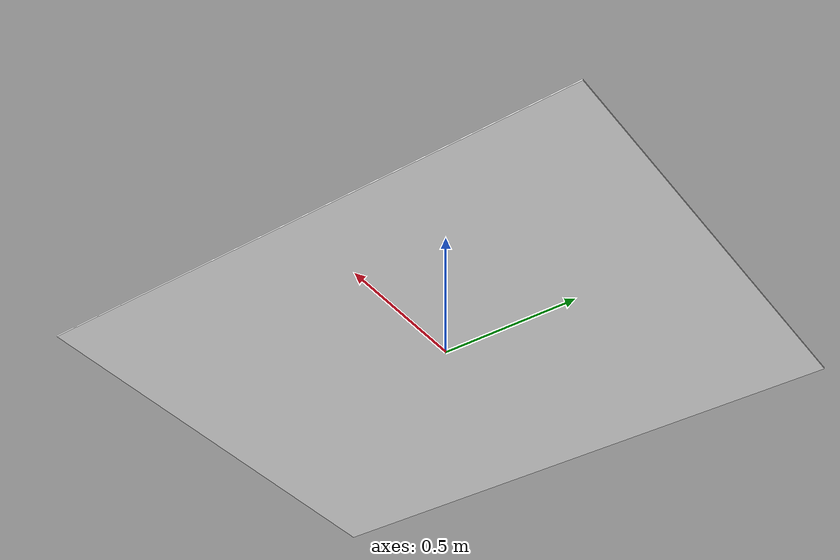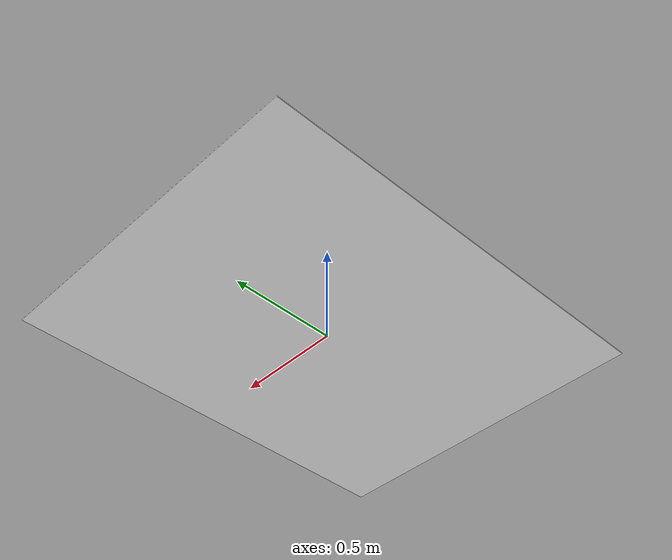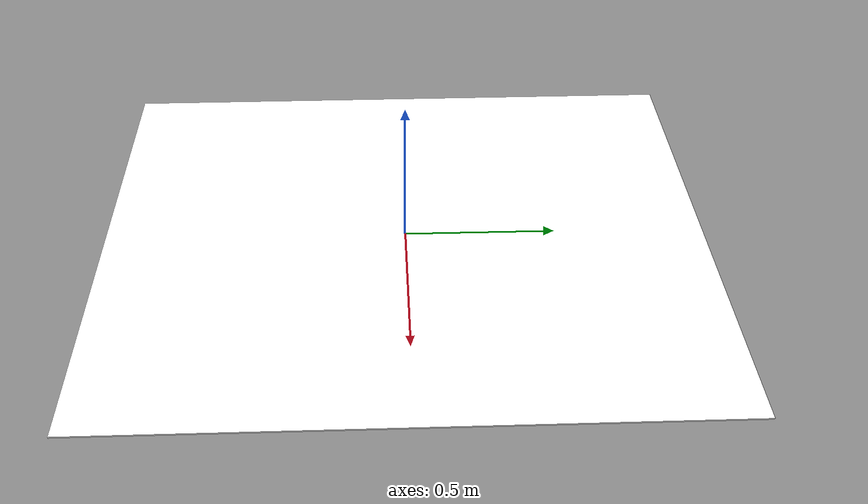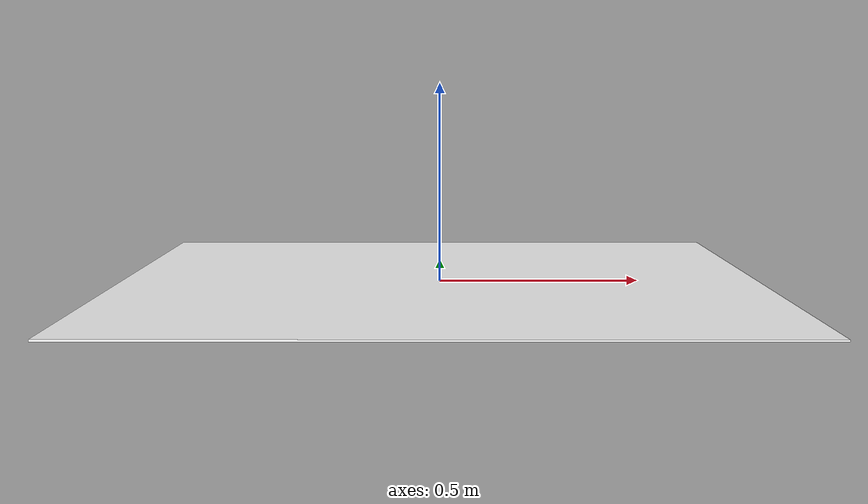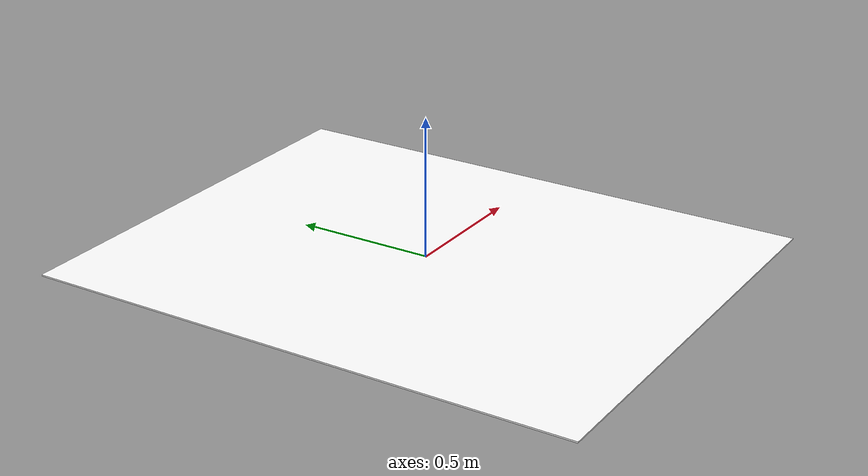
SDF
<?xml version="1.0"?>
<sdf version='1.4'>
  <model name='rug_ivory_2m'>
    <link name="link">
      <visual name="visual">
        <geometry>
          <box>
            <size>1.6 2 0.005</size>
          </box>
        </geometry>
        <material>
          <pbr>
            <metal>
              <albedo_map>textures/rug_ivory_469x588.png</albedo_map>
            <metalness>0.0</metalness><roughness>0.95</roughness>
            </metal>
          </pbr>
          <ambient>1 1 1 1</ambient>
          <diffuse>1 1 1 1</diffuse>
          <specular>1 1 1 1</specular>
          <emissive>0 0 0 1</emissive>
        </material>
      </visual>
    </link>
    <static>1</static>
    <allow_auto_disable>1</allow_auto_disable>
  </model>
</sdf>
